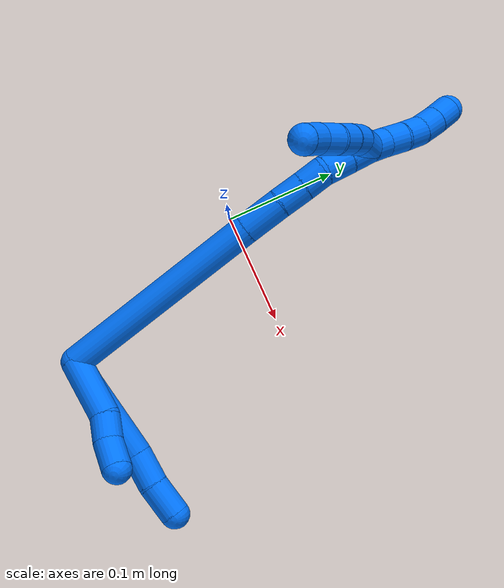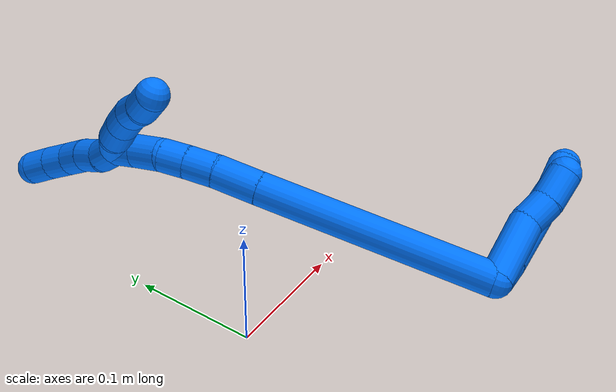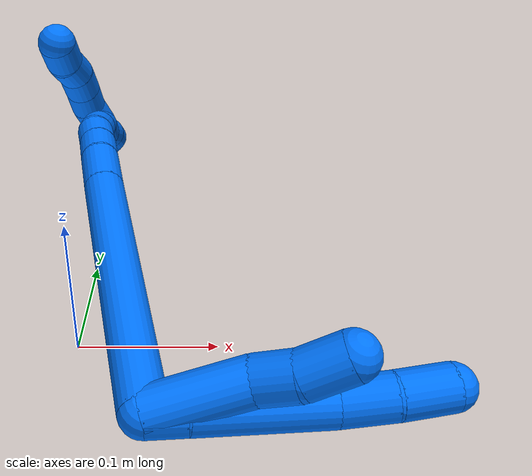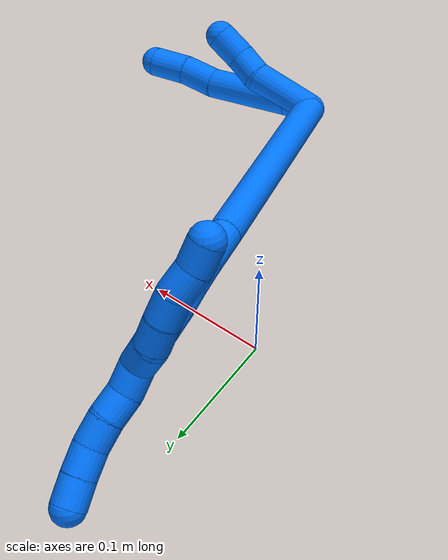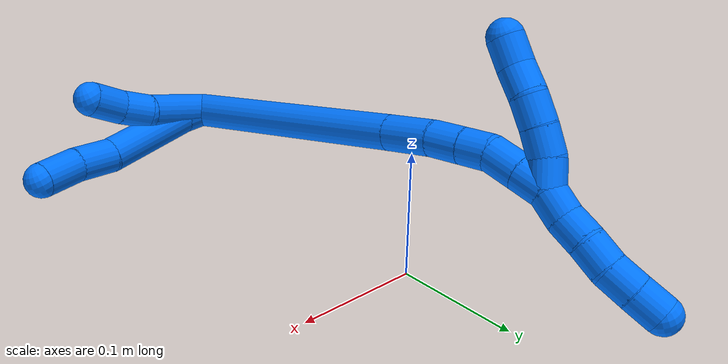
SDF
<sdf version="1.7">
 <world name="default">
  <model name="14">
   <static>0</static>
   <link name="14">
    <collision name="collision-cylinder-e_1_2_8">
     <pose>0.009763 0.001422 0.002449 -0.526132 1.28847 -0.39919</pose>
     <geometry><cylinder><radius>0.0125</radius><length>0.02033</length></cylinder></geometry>
     <surface>
      <friction><ode><mu>1.16</mu><mu2>1.16</mu2><slip1>0</slip1><slip2>0</slip2></ode></friction>
      <contact><ode><kp>1e+06</kp><kd>1</kd><max_vel>0</max_vel><min_depth>0.001</min_depth></ode></contact>
     </surface>
    </collision>
    <visual name="visual-cylinder-e_1_2_8">
     <pose>0.009763 0.001422 0.002449 -0.526132 1.28847 -0.39919</pose>
     <geometry><cylinder><radius>0.0125</radius><length>0.02033</length></cylinder></geometry>
     <material><ambient>0 0.462745 1 1</ambient></material>
    </visual>
    <collision name="collision-cylinder-e_2_8_9">
     <pose>0.053855 0.009965 0.009866 -0.961663 1.32307 -0.771604</pose>
     <geometry><cylinder><radius>0.0125</radius><length>0.070821</length></cylinder></geometry>
     <surface>
      <friction><ode><mu>1.16</mu><mu2>1.16</mu2><slip1>0</slip1><slip2>0</slip2></ode></friction>
      <contact><ode><kp>1e+06</kp><kd>1</kd><max_vel>0</max_vel><min_depth>0.001</min_depth></ode></contact>
     </surface>
    </collision>
    <visual name="visual-cylinder-e_2_8_9">
     <pose>0.053855 0.009965 0.009866 -0.961663 1.32307 -0.771604</pose>
     <geometry><cylinder><radius>0.0125</radius><length>0.070821</length></cylinder></geometry>
     <material><ambient>0 0.462745 1 1</ambient></material>
    </visual>
    <collision name="collision-cylinder-e_3_9_10">
     <pose>0.101672 0.01928 0.01957 -0.433859 1.20154 -0.299797</pose>
     <geometry><cylinder><radius>0.0125</radius><length>0.028926</length></cylinder></geometry>
     <surface>
      <friction><ode><mu>1.16</mu><mu2>1.16</mu2><slip1>0</slip1><slip2>0</slip2></ode></friction>
      <contact><ode><kp>1e+06</kp><kd>1</kd><max_vel>0</max_vel><min_depth>0.001</min_depth></ode></contact>
     </surface>
    </collision>
    <visual name="visual-cylinder-e_3_9_10">
     <pose>0.101672 0.01928 0.01957 -0.433859 1.20154 -0.299797</pose>
     <geometry><cylinder><radius>0.0125</radius><length>0.028926</length></cylinder></geometry>
     <material><ambient>0 0.462745 1 1</ambient></material>
    </visual>
    <collision name="collision-cylinder-e_4_10_6">
     <pose>0.129204 0.025483 0.027557 -0.889272 1.21863 -0.642032</pose>
     <geometry><cylinder><radius>0.0125</radius><length>0.029923</length></cylinder></geometry>
     <surface>
      <friction><ode><mu>1.16</mu><mu2>1.16</mu2><slip1>0</slip1><slip2>0</slip2></ode></friction>
      <contact><ode><kp>1e+06</kp><kd>1</kd><max_vel>0</max_vel><min_depth>0.001</min_depth></ode></contact>
     </surface>
    </collision>
    <visual name="visual-cylinder-e_4_10_6">
     <pose>0.129204 0.025483 0.027557 -0.889272 1.21863 -0.642032</pose>
     <geometry><cylinder><radius>0.0125</radius><length>0.029923</length></cylinder></geometry>
     <material><ambient>0 0.462745 1 1</ambient></material>
    </visual>
    <collision name="collision-cylinder-e_1_2_11">
     <pose>0.022166 0.005692 0.012875 -0.416274 1.00499 -0.23109</pose>
     <geometry><cylinder><radius>0.0125</radius><length>0.052516</length></cylinder></geometry>
     <surface>
      <friction><ode><mu>1.16</mu><mu2>1.16</mu2><slip1>0</slip1><slip2>0</slip2></ode></friction>
      <contact><ode><kp>1e+06</kp><kd>1</kd><max_vel>0</max_vel><min_depth>0.001</min_depth></ode></contact>
     </surface>
    </collision>
    <visual name="visual-cylinder-e_1_2_11">
     <pose>0.022166 0.005692 0.012875 -0.416274 1.00499 -0.23109</pose>
     <geometry><cylinder><radius>0.0125</radius><length>0.052516</length></cylinder></geometry>
     <material><ambient>0 0.462745 1 1</ambient></material>
    </visual>
    <collision name="collision-cylinder-e_2_11_12">
     <pose>0.053062 0.010318 0.032602 0.154387 0.899485 0.074642</pose>
     <geometry><cylinder><radius>0.0125</radius><length>0.022298</length></cylinder></geometry>
     <surface>
      <friction><ode><mu>1.16</mu><mu2>1.16</mu2><slip1>0</slip1><slip2>0</slip2></ode></friction>
      <contact><ode><kp>1e+06</kp><kd>1</kd><max_vel>0</max_vel><min_depth>0.001</min_depth></ode></contact>
     </surface>
    </collision>
    <visual name="visual-cylinder-e_2_11_12">
     <pose>0.053062 0.010318 0.032602 0.154387 0.899485 0.074642</pose>
     <geometry><cylinder><radius>0.0125</radius><length>0.022298</length></cylinder></geometry>
     <material><ambient>0 0.462745 1 1</ambient></material>
    </visual>
    <collision name="collision-cylinder-e_3_12_5">
     <pose>0.070774 0.010768 0.048149 -0.172732 0.794165 -0.072585</pose>
     <geometry><cylinder><radius>0.0125</radius><length>0.025185</length></cylinder></geometry>
     <surface>
      <friction><ode><mu>1.16</mu><mu2>1.16</mu2><slip1>0</slip1><slip2>0</slip2></ode></friction>
      <contact><ode><kp>1e+06</kp><kd>1</kd><max_vel>0</max_vel><min_depth>0.001</min_depth></ode></contact>
     </surface>
    </collision>
    <visual name="visual-cylinder-e_3_12_5">
     <pose>0.070774 0.010768 0.048149 -0.172732 0.794165 -0.072585</pose>
     <geometry><cylinder><radius>0.0125</radius><length>0.025185</length></cylinder></geometry>
     <material><ambient>0 0.462745 1 1</ambient></material>
    </visual>
    <collision name="collision-cylinder-e_1_2_13">
     <pose>-0.022235 0.085406 -0.012554 -1.71675 -0.252101 0.291345</pose>
     <geometry><cylinder><radius>0.0125</radius><length>0.178283</length></cylinder></geometry>
     <surface>
      <friction><ode><mu>1.16</mu><mu2>1.16</mu2><slip1>0</slip1><slip2>0</slip2></ode></friction>
      <contact><ode><kp>1e+06</kp><kd>1</kd><max_vel>0</max_vel><min_depth>0.001</min_depth></ode></contact>
     </surface>
    </collision>
    <visual name="visual-cylinder-e_1_2_13">
     <pose>-0.022235 0.085406 -0.012554 -1.71675 -0.252101 0.291345</pose>
     <geometry><cylinder><radius>0.0125</radius><length>0.178283</length></cylinder></geometry>
     <material><ambient>0 0.462745 1 1</ambient></material>
    </visual>
    <collision name="collision-cylinder-e_2_13_14">
     <pose>-0.048474 0.18718 -0.02751 -1.71647 -0.237426 0.274365</pose>
     <geometry><cylinder><radius>0.0125</radius><length>0.034042</length></cylinder></geometry>
     <surface>
      <friction><ode><mu>1.16</mu><mu2>1.16</mu2><slip1>0</slip1><slip2>0</slip2></ode></friction>
      <contact><ode><kp>1e+06</kp><kd>1</kd><max_vel>0</max_vel><min_depth>0.001</min_depth></ode></contact>
     </surface>
    </collision>
    <visual name="visual-cylinder-e_2_13_14">
     <pose>-0.048474 0.18718 -0.02751 -1.71647 -0.237426 0.274365</pose>
     <geometry><cylinder><radius>0.0125</radius><length>0.034042</length></cylinder></geometry>
     <material><ambient>0 0.462745 1 1</ambient></material>
    </visual>
    <collision name="collision-cylinder-e_3_14_15">
     <pose>-0.05475 0.214545 -0.032653 -1.81513 -0.197929 0.252809</pose>
     <geometry><cylinder><radius>0.0125</radius><length>0.023119</length></cylinder></geometry>
     <surface>
      <friction><ode><mu>1.16</mu><mu2>1.16</mu2><slip1>0</slip1><slip2>0</slip2></ode></friction>
      <contact><ode><kp>1e+06</kp><kd>1</kd><max_vel>0</max_vel><min_depth>0.001</min_depth></ode></contact>
     </surface>
    </collision>
    <visual name="visual-cylinder-e_3_14_15">
     <pose>-0.05475 0.214545 -0.032653 -1.81513 -0.197929 0.252809</pose>
     <geometry><cylinder><radius>0.0125</radius><length>0.023119</length></cylinder></geometry>
     <material><ambient>0 0.462745 1 1</ambient></material>
    </visual>
    <collision name="collision-cylinder-e_4_15_16">
     <pose>-0.059216 0.235102 -0.03802 -1.83881 -0.217676 0.284707</pose>
     <geometry><cylinder><radius>0.0125</radius><length>0.020304</length></cylinder></geometry>
     <surface>
      <friction><ode><mu>1.16</mu><mu2>1.16</mu2><slip1>0</slip1><slip2>0</slip2></ode></friction>
      <contact><ode><kp>1e+06</kp><kd>1</kd><max_vel>0</max_vel><min_depth>0.001</min_depth></ode></contact>
     </surface>
    </collision>
    <visual name="visual-cylinder-e_4_15_16">
     <pose>-0.059216 0.235102 -0.03802 -1.83881 -0.217676 0.284707</pose>
     <geometry><cylinder><radius>0.0125</radius><length>0.020304</length></cylinder></geometry>
     <material><ambient>0 0.462745 1 1</ambient></material>
    </visual>
    <collision name="collision-cylinder-e_5_16_17">
     <pose>-0.06126 0.255109 -0.046126 -2.05387 0.01258 -0.020803</pose>
     <geometry><cylinder><radius>0.0125</radius><length>0.023599</length></cylinder></geometry>
     <surface>
      <friction><ode><mu>1.16</mu><mu2>1.16</mu2><slip1>0</slip1><slip2>0</slip2></ode></friction>
      <contact><ode><kp>1e+06</kp><kd>1</kd><max_vel>0</max_vel><min_depth>0.001</min_depth></ode></contact>
     </surface>
    </collision>
    <visual name="visual-cylinder-e_5_16_17">
     <pose>-0.06126 0.255109 -0.046126 -2.05387 0.01258 -0.020803</pose>
     <geometry><cylinder><radius>0.0125</radius><length>0.023599</length></cylinder></geometry>
     <material><ambient>0 0.462745 1 1</ambient></material>
    </visual>
    <collision name="collision-cylinder-e_6_17_1">
     <pose>-0.061098 0.274593 -0.056605 -2.07611 0.001341 -0.002274</pose>
     <geometry><cylinder><radius>0.0125</radius><length>0.020653</length></cylinder></geometry>
     <surface>
      <friction><ode><mu>1.16</mu><mu2>1.16</mu2><slip1>0</slip1><slip2>0</slip2></ode></friction>
      <contact><ode><kp>1e+06</kp><kd>1</kd><max_vel>0</max_vel><min_depth>0.001</min_depth></ode></contact>
     </surface>
    </collision>
    <visual name="visual-cylinder-e_6_17_1">
     <pose>-0.061098 0.274593 -0.056605 -2.07611 0.001341 -0.002274</pose>
     <geometry><cylinder><radius>0.0125</radius><length>0.020653</length></cylinder></geometry>
     <material><ambient>0 0.462745 1 1</ambient></material>
    </visual>
    <collision name="collision-cylinder-e_1_1_18">
     <pose>-0.066814 0.281865 -0.0536 0.216929 -0.610125 -0.068551</pose>
     <geometry><cylinder><radius>0.0125</radius><length>0.02</length></cylinder></geometry>
     <surface>
      <friction><ode><mu>1.16</mu><mu2>1.16</mu2><slip1>0</slip1><slip2>0</slip2></ode></friction>
      <contact><ode><kp>1e+06</kp><kd>1</kd><max_vel>0</max_vel><min_depth>0.001</min_depth></ode></contact>
     </surface>
    </collision>
    <visual name="visual-cylinder-e_1_1_18">
     <pose>-0.066814 0.281865 -0.0536 0.216929 -0.610125 -0.068551</pose>
     <geometry><cylinder><radius>0.0125</radius><length>0.02</length></cylinder></geometry>
     <material><ambient>0 0.462745 1 1</ambient></material>
    </visual>
    <collision name="collision-cylinder-e_2_18_19">
     <pose>-0.075819 0.277083 -0.036643 0.325099 -0.333735 -0.055231</pose>
     <geometry><cylinder><radius>0.0125</radius><length>0.02</length></cylinder></geometry>
     <surface>
      <friction><ode><mu>1.16</mu><mu2>1.16</mu2><slip1>0</slip1><slip2>0</slip2></ode></friction>
      <contact><ode><kp>1e+06</kp><kd>1</kd><max_vel>0</max_vel><min_depth>0.001</min_depth></ode></contact>
     </surface>
    </collision>
    <visual name="visual-cylinder-e_2_18_19">
     <pose>-0.075819 0.277083 -0.036643 0.325099 -0.333735 -0.055231</pose>
     <geometry><cylinder><radius>0.0125</radius><length>0.02</length></cylinder></geometry>
     <material><ambient>0 0.462745 1 1</ambient></material>
    </visual>
    <collision name="collision-cylinder-e_3_19_20">
     <pose>-0.082254 0.270216 -0.019018 0.417716 -0.321455 -0.068698</pose>
     <geometry><cylinder><radius>0.0125</radius><length>0.02</length></cylinder></geometry>
     <surface>
      <friction><ode><mu>1.16</mu><mu2>1.16</mu2><slip1>0</slip1><slip2>0</slip2></ode></friction>
      <contact><ode><kp>1e+06</kp><kd>1</kd><max_vel>0</max_vel><min_depth>0.001</min_depth></ode></contact>
     </surface>
    </collision>
    <visual name="visual-cylinder-e_3_19_20">
     <pose>-0.082254 0.270216 -0.019018 0.417716 -0.321455 -0.068698</pose>
     <geometry><cylinder><radius>0.0125</radius><length>0.02</length></cylinder></geometry>
     <material><ambient>0 0.462745 1 1</ambient></material>
    </visual>
    <collision name="collision-cylinder-e_4_20_21">
     <pose>-0.089311 0.260699 -0.003087 0.662966 -0.400309 -0.139423</pose>
     <geometry><cylinder><radius>0.0125</radius><length>0.02</length></cylinder></geometry>
     <surface>
      <friction><ode><mu>1.16</mu><mu2>1.16</mu2><slip1>0</slip1><slip2>0</slip2></ode></friction>
      <contact><ode><kp>1e+06</kp><kd>1</kd><max_vel>0</max_vel><min_depth>0.001</min_depth></ode></contact>
     </surface>
    </collision>
    <visual name="visual-cylinder-e_4_20_21">
     <pose>-0.089311 0.260699 -0.003087 0.662966 -0.400309 -0.139423</pose>
     <geometry><cylinder><radius>0.0125</radius><length>0.02</length></cylinder></geometry>
     <material><ambient>0 0.462745 1 1</ambient></material>
    </visual>
    <collision name="collision-cylinder-e_5_21_4">
     <pose>-0.096177 0.25111 0.012878 0.423139 -0.301499 -0.065229</pose>
     <geometry><cylinder><radius>0.0125</radius><length>0.02</length></cylinder></geometry>
     <surface>
      <friction><ode><mu>1.16</mu><mu2>1.16</mu2><slip1>0</slip1><slip2>0</slip2></ode></friction>
      <contact><ode><kp>1e+06</kp><kd>1</kd><max_vel>0</max_vel><min_depth>0.001</min_depth></ode></contact>
     </surface>
    </collision>
    <visual name="visual-cylinder-e_5_21_4">
     <pose>-0.096177 0.25111 0.012878 0.423139 -0.301499 -0.065229</pose>
     <geometry><cylinder><radius>0.0125</radius><length>0.02</length></cylinder></geometry>
     <material><ambient>0 0.462745 1 1</ambient></material>
    </visual>
    <collision name="collision-cylinder-e_1_1_22">
     <pose>-0.059445 0.289358 -0.069634 -2.52193 0.16461 -0.504372</pose>
     <geometry><cylinder><radius>0.0125</radius><length>0.02</length></cylinder></geometry>
     <surface>
      <friction><ode><mu>1.16</mu><mu2>1.16</mu2><slip1>0</slip1><slip2>0</slip2></ode></friction>
      <contact><ode><kp>1e+06</kp><kd>1</kd><max_vel>0</max_vel><min_depth>0.001</min_depth></ode></contact>
     </surface>
    </collision>
    <visual name="visual-cylinder-e_1_1_22">
     <pose>-0.059445 0.289358 -0.069634 -2.52193 0.16461 -0.504372</pose>
     <geometry><cylinder><radius>0.0125</radius><length>0.02</length></cylinder></geometry>
     <material><ambient>0 0.462745 1 1</ambient></material>
    </visual>
    <collision name="collision-cylinder-e_2_22_23">
     <pose>-0.056031 0.303039 -0.083462 -2.20069 0.178499 -0.348376</pose>
     <geometry><cylinder><radius>0.0125</radius><length>0.02</length></cylinder></geometry>
     <surface>
      <friction><ode><mu>1.16</mu><mu2>1.16</mu2><slip1>0</slip1><slip2>0</slip2></ode></friction>
      <contact><ode><kp>1e+06</kp><kd>1</kd><max_vel>0</max_vel><min_depth>0.001</min_depth></ode></contact>
     </surface>
    </collision>
    <visual name="visual-cylinder-e_2_22_23">
     <pose>-0.056031 0.303039 -0.083462 -2.20069 0.178499 -0.348376</pose>
     <geometry><cylinder><radius>0.0125</radius><length>0.02</length></cylinder></geometry>
     <material><ambient>0 0.462745 1 1</ambient></material>
    </visual>
    <collision name="collision-cylinder-e_3_23_24">
     <pose>-0.052805 0.317962 -0.096282 -2.35993 0.145527 -0.350199</pose>
     <geometry><cylinder><radius>0.0125</radius><length>0.02</length></cylinder></geometry>
     <surface>
      <friction><ode><mu>1.16</mu><mu2>1.16</mu2><slip1>0</slip1><slip2>0</slip2></ode></friction>
      <contact><ode><kp>1e+06</kp><kd>1</kd><max_vel>0</max_vel><min_depth>0.001</min_depth></ode></contact>
     </surface>
    </collision>
    <visual name="visual-cylinder-e_3_23_24">
     <pose>-0.052805 0.317962 -0.096282 -2.35993 0.145527 -0.350199</pose>
     <geometry><cylinder><radius>0.0125</radius><length>0.02</length></cylinder></geometry>
     <material><ambient>0 0.462745 1 1</ambient></material>
    </visual>
    <collision name="collision-cylinder-e_4_24_25">
     <pose>-0.051799 0.332158 -0.110203 -2.33308 -0.044356 0.103604</pose>
     <geometry><cylinder><radius>0.0125</radius><length>0.02</length></cylinder></geometry>
     <surface>
      <friction><ode><mu>1.16</mu><mu2>1.16</mu2><slip1>0</slip1><slip2>0</slip2></ode></friction>
      <contact><ode><kp>1e+06</kp><kd>1</kd><max_vel>0</max_vel><min_depth>0.001</min_depth></ode></contact>
     </surface>
    </collision>
    <visual name="visual-cylinder-e_4_24_25">
     <pose>-0.051799 0.332158 -0.110203 -2.33308 -0.044356 0.103604</pose>
     <geometry><cylinder><radius>0.0125</radius><length>0.02</length></cylinder></geometry>
     <material><ambient>0 0.462745 1 1</ambient></material>
    </visual>
    <collision name="collision-cylinder-e_5_25_3">
     <pose>-0.05316 0.346367 -0.1242 -2.36435 -0.091953 0.2238</pose>
     <geometry><cylinder><radius>0.0125</radius><length>0.02</length></cylinder></geometry>
     <surface>
      <friction><ode><mu>1.16</mu><mu2>1.16</mu2><slip1>0</slip1><slip2>0</slip2></ode></friction>
      <contact><ode><kp>1e+06</kp><kd>1</kd><max_vel>0</max_vel><min_depth>0.001</min_depth></ode></contact>
     </surface>
    </collision>
    <visual name="visual-cylinder-e_5_25_3">
     <pose>-0.05316 0.346367 -0.1242 -2.36435 -0.091953 0.2238</pose>
     <geometry><cylinder><radius>0.0125</radius><length>0.02</length></cylinder></geometry>
     <material><ambient>0 0.462745 1 1</ambient></material>
    </visual>
    <collision name="collision-sphere-3">
     <pose>-0.054079 0.35335 -0.131299 0 -0 0</pose>
     <geometry><sphere><radius>0.0125</radius></sphere></geometry>
     <surface>
      <friction><ode><mu>1.16</mu><mu2>1.16</mu2><slip1>0</slip1><slip2>0</slip2></ode></friction>
      <contact><ode><kp>1e+06</kp><kd>1</kd><max_vel>0</max_vel><min_depth>0.001</min_depth></ode></contact>
     </surface>
    </collision>
    <visual name="visual-sphere-3">
     <pose>-0.054079 0.35335 -0.131299 0 -0 0</pose>
     <geometry><sphere><radius>0.0125</radius></sphere></geometry>
     <material><ambient>0 0.462745 1 1</ambient></material>
    </visual>
    <collision name="collision-sphere-25">
     <pose>-0.052242 0.339383 -0.117102 0 -0 0</pose>
     <geometry><sphere><radius>0.0125</radius></sphere></geometry>
     <surface>
      <friction><ode><mu>1.16</mu><mu2>1.16</mu2><slip1>0</slip1><slip2>0</slip2></ode></friction>
      <contact><ode><kp>1e+06</kp><kd>1</kd><max_vel>0</max_vel><min_depth>0.001</min_depth></ode></contact>
     </surface>
    </collision>
    <visual name="visual-sphere-25">
     <pose>-0.052242 0.339383 -0.117102 0 -0 0</pose>
     <geometry><sphere><radius>0.0125</radius></sphere></geometry>
     <material><ambient>0 0.462745 1 1</ambient></material>
    </visual>
    <collision name="collision-sphere-24">
     <pose>-0.051355 0.324932 -0.103304 0 -0 0</pose>
     <geometry><sphere><radius>0.0125</radius></sphere></geometry>
     <surface>
      <friction><ode><mu>1.16</mu><mu2>1.16</mu2><slip1>0</slip1><slip2>0</slip2></ode></friction>
      <contact><ode><kp>1e+06</kp><kd>1</kd><max_vel>0</max_vel><min_depth>0.001</min_depth></ode></contact>
     </surface>
    </collision>
    <visual name="visual-sphere-24">
     <pose>-0.051355 0.324932 -0.103304 0 -0 0</pose>
     <geometry><sphere><radius>0.0125</radius></sphere></geometry>
     <material><ambient>0 0.462745 1 1</ambient></material>
    </visual>
    <collision name="collision-sphere-23">
     <pose>-0.054256 0.310992 -0.089259 0 -0 0</pose>
     <geometry><sphere><radius>0.0125</radius></sphere></geometry>
     <surface>
      <friction><ode><mu>1.16</mu><mu2>1.16</mu2><slip1>0</slip1><slip2>0</slip2></ode></friction>
      <contact><ode><kp>1e+06</kp><kd>1</kd><max_vel>0</max_vel><min_depth>0.001</min_depth></ode></contact>
     </surface>
    </collision>
    <visual name="visual-sphere-23">
     <pose>-0.054256 0.310992 -0.089259 0 -0 0</pose>
     <geometry><sphere><radius>0.0125</radius></sphere></geometry>
     <material><ambient>0 0.462745 1 1</ambient></material>
    </visual>
    <collision name="collision-sphere-22">
     <pose>-0.057807 0.295087 -0.077665 0 -0 0</pose>
     <geometry><sphere><radius>0.0125</radius></sphere></geometry>
     <surface>
      <friction><ode><mu>1.16</mu><mu2>1.16</mu2><slip1>0</slip1><slip2>0</slip2></ode></friction>
      <contact><ode><kp>1e+06</kp><kd>1</kd><max_vel>0</max_vel><min_depth>0.001</min_depth></ode></contact>
     </surface>
    </collision>
    <visual name="visual-sphere-22">
     <pose>-0.057807 0.295087 -0.077665 0 -0 0</pose>
     <geometry><sphere><radius>0.0125</radius></sphere></geometry>
     <material><ambient>0 0.462745 1 1</ambient></material>
    </visual>
    <collision name="collision-sphere-4">
     <pose>-0.099147 0.247189 0.021585 0 -0 0</pose>
     <geometry><sphere><radius>0.0125</radius></sphere></geometry>
     <surface>
      <friction><ode><mu>1.16</mu><mu2>1.16</mu2><slip1>0</slip1><slip2>0</slip2></ode></friction>
      <contact><ode><kp>1e+06</kp><kd>1</kd><max_vel>0</max_vel><min_depth>0.001</min_depth></ode></contact>
     </surface>
    </collision>
    <visual name="visual-sphere-4">
     <pose>-0.099147 0.247189 0.021585 0 -0 0</pose>
     <geometry><sphere><radius>0.0125</radius></sphere></geometry>
     <material><ambient>0 0.462745 1 1</ambient></material>
    </visual>
    <collision name="collision-sphere-21">
     <pose>-0.093208 0.255031 0.004172 0 -0 0</pose>
     <geometry><sphere><radius>0.0125</radius></sphere></geometry>
     <surface>
      <friction><ode><mu>1.16</mu><mu2>1.16</mu2><slip1>0</slip1><slip2>0</slip2></ode></friction>
      <contact><ode><kp>1e+06</kp><kd>1</kd><max_vel>0</max_vel><min_depth>0.001</min_depth></ode></contact>
     </surface>
    </collision>
    <visual name="visual-sphere-21">
     <pose>-0.093208 0.255031 0.004172 0 -0 0</pose>
     <geometry><sphere><radius>0.0125</radius></sphere></geometry>
     <material><ambient>0 0.462745 1 1</ambient></material>
    </visual>
    <collision name="collision-sphere-20">
     <pose>-0.085414 0.266367 -0.010346 0 -0 0</pose>
     <geometry><sphere><radius>0.0125</radius></sphere></geometry>
     <surface>
      <friction><ode><mu>1.16</mu><mu2>1.16</mu2><slip1>0</slip1><slip2>0</slip2></ode></friction>
      <contact><ode><kp>1e+06</kp><kd>1</kd><max_vel>0</max_vel><min_depth>0.001</min_depth></ode></contact>
     </surface>
    </collision>
    <visual name="visual-sphere-20">
     <pose>-0.085414 0.266367 -0.010346 0 -0 0</pose>
     <geometry><sphere><radius>0.0125</radius></sphere></geometry>
     <material><ambient>0 0.462745 1 1</ambient></material>
    </visual>
    <collision name="collision-sphere-11">
     <pose>0.044332 0.011384 0.02575 0 -0 0</pose>
     <geometry><sphere><radius>0.0125</radius></sphere></geometry>
     <surface>
      <friction><ode><mu>1.16</mu><mu2>1.16</mu2><slip1>0</slip1><slip2>0</slip2></ode></friction>
      <contact><ode><kp>1e+06</kp><kd>1</kd><max_vel>0</max_vel><min_depth>0.001</min_depth></ode></contact>
     </surface>
    </collision>
    <visual name="visual-sphere-11">
     <pose>0.044332 0.011384 0.02575 0 -0 0</pose>
     <geometry><sphere><radius>0.0125</radius></sphere></geometry>
     <material><ambient>0 0.462745 1 1</ambient></material>
    </visual>
    <collision name="collision-sphere-6">
     <pose>0.143247 0.029491 0.030808 0 -0 0</pose>
     <geometry><sphere><radius>0.0125</radius></sphere></geometry>
     <surface>
      <friction><ode><mu>1.16</mu><mu2>1.16</mu2><slip1>0</slip1><slip2>0</slip2></ode></friction>
      <contact><ode><kp>1e+06</kp><kd>1</kd><max_vel>0</max_vel><min_depth>0.001</min_depth></ode></contact>
     </surface>
    </collision>
    <visual name="visual-sphere-6">
     <pose>0.143247 0.029491 0.030808 0 -0 0</pose>
     <geometry><sphere><radius>0.0125</radius></sphere></geometry>
     <material><ambient>0 0.462745 1 1</ambient></material>
    </visual>
    <collision name="collision-sphere-10">
     <pose>0.11516 0.021475 0.024306 0 -0 0</pose>
     <geometry><sphere><radius>0.0125</radius></sphere></geometry>
     <surface>
      <friction><ode><mu>1.16</mu><mu2>1.16</mu2><slip1>0</slip1><slip2>0</slip2></ode></friction>
      <contact><ode><kp>1e+06</kp><kd>1</kd><max_vel>0</max_vel><min_depth>0.001</min_depth></ode></contact>
     </surface>
    </collision>
    <visual name="visual-sphere-10">
     <pose>0.11516 0.021475 0.024306 0 -0 0</pose>
     <geometry><sphere><radius>0.0125</radius></sphere></geometry>
     <material><ambient>0 0.462745 1 1</ambient></material>
    </visual>
    <collision name="collision-sphere-9">
     <pose>0.088184 0.017086 0.014833 0 -0 0</pose>
     <geometry><sphere><radius>0.0125</radius></sphere></geometry>
     <surface>
      <friction><ode><mu>1.16</mu><mu2>1.16</mu2><slip1>0</slip1><slip2>0</slip2></ode></friction>
      <contact><ode><kp>1e+06</kp><kd>1</kd><max_vel>0</max_vel><min_depth>0.001</min_depth></ode></contact>
     </surface>
    </collision>
    <visual name="visual-sphere-9">
     <pose>0.088184 0.017086 0.014833 0 -0 0</pose>
     <geometry><sphere><radius>0.0125</radius></sphere></geometry>
     <material><ambient>0 0.462745 1 1</ambient></material>
    </visual>
    <collision name="collision-sphere-2">
     <geometry><sphere><radius>0.0125</radius></sphere></geometry>
     <surface>
      <friction><ode><mu>1.16</mu><mu2>1.16</mu2><slip1>0</slip1><slip2>0</slip2></ode></friction>
      <contact><ode><kp>1e+06</kp><kd>1</kd><max_vel>0</max_vel><min_depth>0.001</min_depth></ode></contact>
     </surface>
    </collision>
    <visual name="visual-sphere-2">
     <geometry><sphere><radius>0.0125</radius></sphere></geometry>
     <material><ambient>0 0.462745 1 1</ambient></material>
    </visual>
    <collision name="collision-sphere-19">
     <pose>-0.079095 0.274065 -0.02769 0 -0 0</pose>
     <geometry><sphere><radius>0.0125</radius></sphere></geometry>
     <surface>
      <friction><ode><mu>1.16</mu><mu2>1.16</mu2><slip1>0</slip1><slip2>0</slip2></ode></friction>
      <contact><ode><kp>1e+06</kp><kd>1</kd><max_vel>0</max_vel><min_depth>0.001</min_depth></ode></contact>
     </surface>
    </collision>
    <visual name="visual-sphere-19">
     <pose>-0.079095 0.274065 -0.02769 0 -0 0</pose>
     <geometry><sphere><radius>0.0125</radius></sphere></geometry>
     <material><ambient>0 0.462745 1 1</ambient></material>
    </visual>
    <collision name="collision-sphere-8">
     <pose>0.019525 0.002844 0.004898 0 -0 0</pose>
     <geometry><sphere><radius>0.0125</radius></sphere></geometry>
     <surface>
      <friction><ode><mu>1.16</mu><mu2>1.16</mu2><slip1>0</slip1><slip2>0</slip2></ode></friction>
      <contact><ode><kp>1e+06</kp><kd>1</kd><max_vel>0</max_vel><min_depth>0.001</min_depth></ode></contact>
     </surface>
    </collision>
    <visual name="visual-sphere-8">
     <pose>0.019525 0.002844 0.004898 0 -0 0</pose>
     <geometry><sphere><radius>0.0125</radius></sphere></geometry>
     <material><ambient>0 0.462745 1 1</ambient></material>
    </visual>
    <collision name="collision-sphere-12">
     <pose>0.061792 0.009251 0.039454 0 -0 0</pose>
     <geometry><sphere><radius>0.0125</radius></sphere></geometry>
     <surface>
      <friction><ode><mu>1.16</mu><mu2>1.16</mu2><slip1>0</slip1><slip2>0</slip2></ode></friction>
      <contact><ode><kp>1e+06</kp><kd>1</kd><max_vel>0</max_vel><min_depth>0.001</min_depth></ode></contact>
     </surface>
    </collision>
    <visual name="visual-sphere-12">
     <pose>0.061792 0.009251 0.039454 0 -0 0</pose>
     <geometry><sphere><radius>0.0125</radius></sphere></geometry>
     <material><ambient>0 0.462745 1 1</ambient></material>
    </visual>
    <collision name="collision-sphere-5">
     <pose>0.079756 0.012285 0.056844 0 -0 0</pose>
     <geometry><sphere><radius>0.0125</radius></sphere></geometry>
     <surface>
      <friction><ode><mu>1.16</mu><mu2>1.16</mu2><slip1>0</slip1><slip2>0</slip2></ode></friction>
      <contact><ode><kp>1e+06</kp><kd>1</kd><max_vel>0</max_vel><min_depth>0.001</min_depth></ode></contact>
     </surface>
    </collision>
    <visual name="visual-sphere-5">
     <pose>0.079756 0.012285 0.056844 0 -0 0</pose>
     <geometry><sphere><radius>0.0125</radius></sphere></geometry>
     <material><ambient>0 0.462745 1 1</ambient></material>
    </visual>
    <collision name="collision-sphere-13">
     <pose>-0.044471 0.170812 -0.025109 0 -0 0</pose>
     <geometry><sphere><radius>0.0125</radius></sphere></geometry>
     <surface>
      <friction><ode><mu>1.16</mu><mu2>1.16</mu2><slip1>0</slip1><slip2>0</slip2></ode></friction>
      <contact><ode><kp>1e+06</kp><kd>1</kd><max_vel>0</max_vel><min_depth>0.001</min_depth></ode></contact>
     </surface>
    </collision>
    <visual name="visual-sphere-13">
     <pose>-0.044471 0.170812 -0.025109 0 -0 0</pose>
     <geometry><sphere><radius>0.0125</radius></sphere></geometry>
     <material><ambient>0 0.462745 1 1</ambient></material>
    </visual>
    <collision name="collision-sphere-14">
     <pose>-0.052477 0.203548 -0.029911 0 -0 0</pose>
     <geometry><sphere><radius>0.0125</radius></sphere></geometry>
     <surface>
      <friction><ode><mu>1.16</mu><mu2>1.16</mu2><slip1>0</slip1><slip2>0</slip2></ode></friction>
      <contact><ode><kp>1e+06</kp><kd>1</kd><max_vel>0</max_vel><min_depth>0.001</min_depth></ode></contact>
     </surface>
    </collision>
    <visual name="visual-sphere-14">
     <pose>-0.052477 0.203548 -0.029911 0 -0 0</pose>
     <geometry><sphere><radius>0.0125</radius></sphere></geometry>
     <material><ambient>0 0.462745 1 1</ambient></material>
    </visual>
    <collision name="collision-sphere-15">
     <pose>-0.057024 0.225543 -0.035395 0 -0 0</pose>
     <geometry><sphere><radius>0.0125</radius></sphere></geometry>
     <surface>
      <friction><ode><mu>1.16</mu><mu2>1.16</mu2><slip1>0</slip1><slip2>0</slip2></ode></friction>
      <contact><ode><kp>1e+06</kp><kd>1</kd><max_vel>0</max_vel><min_depth>0.001</min_depth></ode></contact>
     </surface>
    </collision>
    <visual name="visual-sphere-15">
     <pose>-0.057024 0.225543 -0.035395 0 -0 0</pose>
     <geometry><sphere><radius>0.0125</radius></sphere></geometry>
     <material><ambient>0 0.462745 1 1</ambient></material>
    </visual>
    <collision name="collision-sphere-16">
     <pose>-0.061409 0.24466 -0.040645 0 -0 0</pose>
     <geometry><sphere><radius>0.0125</radius></sphere></geometry>
     <surface>
      <friction><ode><mu>1.16</mu><mu2>1.16</mu2><slip1>0</slip1><slip2>0</slip2></ode></friction>
      <contact><ode><kp>1e+06</kp><kd>1</kd><max_vel>0</max_vel><min_depth>0.001</min_depth></ode></contact>
     </surface>
    </collision>
    <visual name="visual-sphere-16">
     <pose>-0.061409 0.24466 -0.040645 0 -0 0</pose>
     <geometry><sphere><radius>0.0125</radius></sphere></geometry>
     <material><ambient>0 0.462745 1 1</ambient></material>
    </visual>
    <collision name="collision-sphere-17">
     <pose>-0.061112 0.265557 -0.051606 0 -0 0</pose>
     <geometry><sphere><radius>0.0125</radius></sphere></geometry>
     <surface>
      <friction><ode><mu>1.16</mu><mu2>1.16</mu2><slip1>0</slip1><slip2>0</slip2></ode></friction>
      <contact><ode><kp>1e+06</kp><kd>1</kd><max_vel>0</max_vel><min_depth>0.001</min_depth></ode></contact>
     </surface>
    </collision>
    <visual name="visual-sphere-17">
     <pose>-0.061112 0.265557 -0.051606 0 -0 0</pose>
     <geometry><sphere><radius>0.0125</radius></sphere></geometry>
     <material><ambient>0 0.462745 1 1</ambient></material>
    </visual>
    <collision name="collision-sphere-1">
     <pose>-0.061084 0.283629 -0.061604 0 -0 0</pose>
     <geometry><sphere><radius>0.0125</radius></sphere></geometry>
     <surface>
      <friction><ode><mu>1.16</mu><mu2>1.16</mu2><slip1>0</slip1><slip2>0</slip2></ode></friction>
      <contact><ode><kp>1e+06</kp><kd>1</kd><max_vel>0</max_vel><min_depth>0.001</min_depth></ode></contact>
     </surface>
    </collision>
    <visual name="visual-sphere-1">
     <pose>-0.061084 0.283629 -0.061604 0 -0 0</pose>
     <geometry><sphere><radius>0.0125</radius></sphere></geometry>
     <material><ambient>0 0.462745 1 1</ambient></material>
    </visual>
    <collision name="collision-sphere-18">
     <pose>-0.072543 0.280101 -0.045596 0 -0 0</pose>
     <geometry><sphere><radius>0.0125</radius></sphere></geometry>
     <surface>
      <friction><ode><mu>1.16</mu><mu2>1.16</mu2><slip1>0</slip1><slip2>0</slip2></ode></friction>
      <contact><ode><kp>1e+06</kp><kd>1</kd><max_vel>0</max_vel><min_depth>0.001</min_depth></ode></contact>
     </surface>
    </collision>
    <visual name="visual-sphere-18">
     <pose>-0.072543 0.280101 -0.045596 0 -0 0</pose>
     <geometry><sphere><radius>0.0125</radius></sphere></geometry>
     <material><ambient>0 0.462745 1 1</ambient></material>
    </visual>
    <inertial>
     <pose>-0.012684 0.139301 -0.018492 0 -0 0</pose>
     <mass>0.75</mass>
     <inertia>
      <ixx>0.000623</ixx>
      <ixy>0</ixy>
      <ixz>0</ixz>
      <iyy>0.000176</iyy>
      <iyz>0</iyz>
      <izz>-0.000411</izz>
     </inertia>
    </inertial>
   </link>
   <pose>0.066461 -0.166635 0.100084 0.225766 0.291917 0.00204</pose>
  </model>
 </world>
</sdf>
